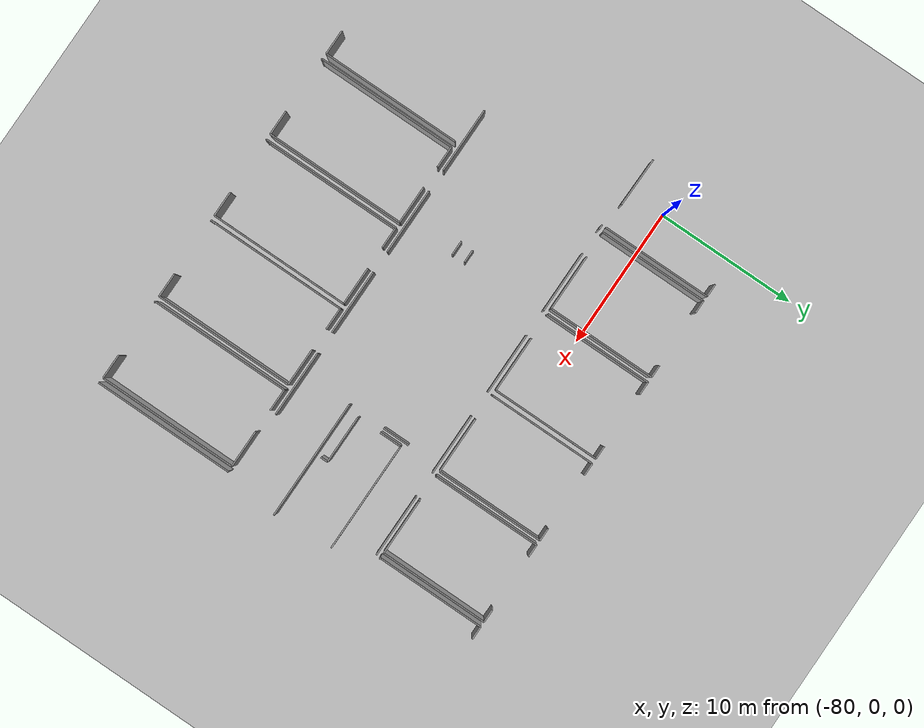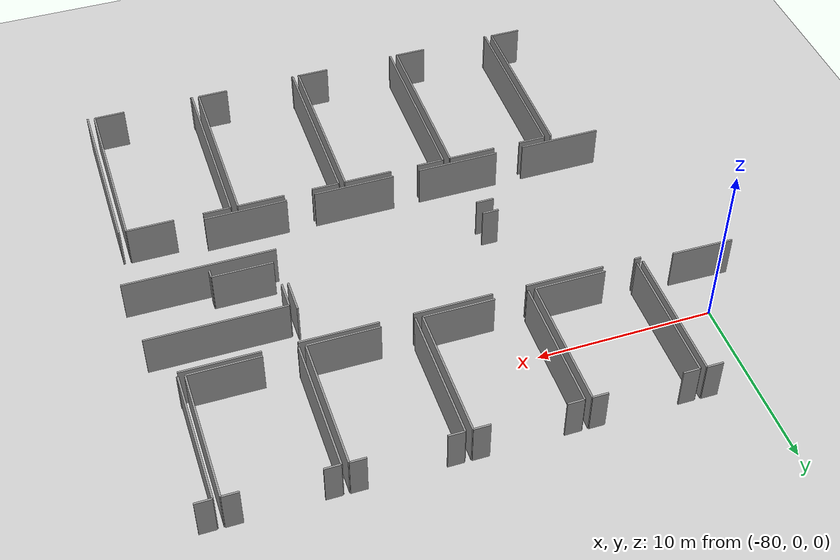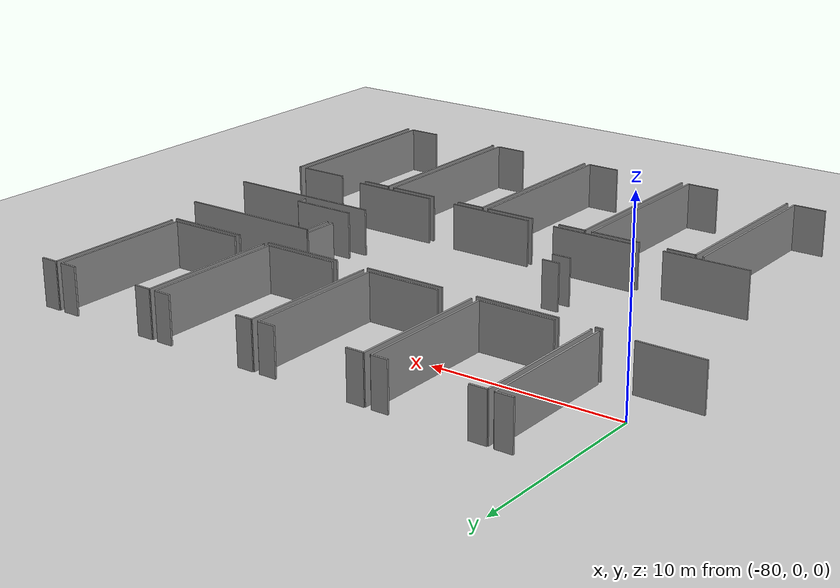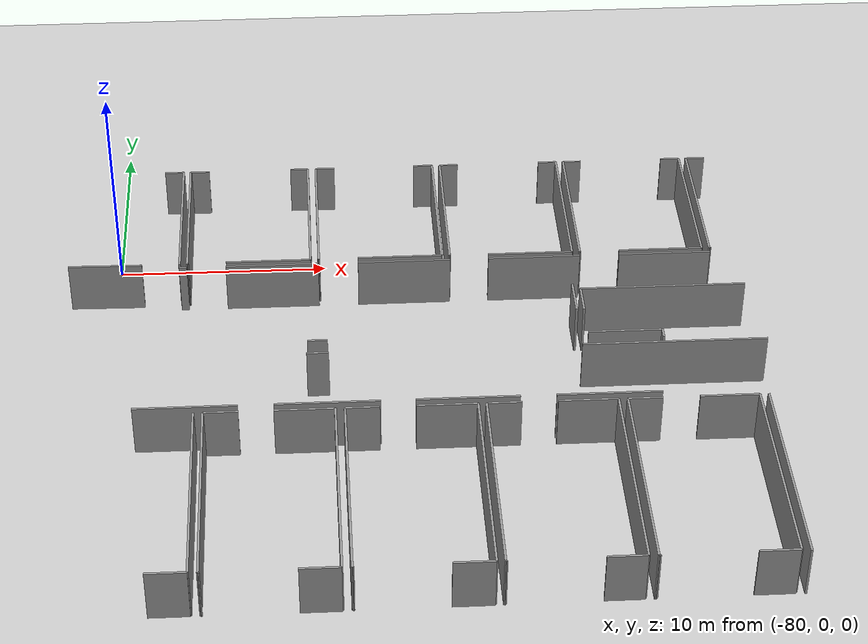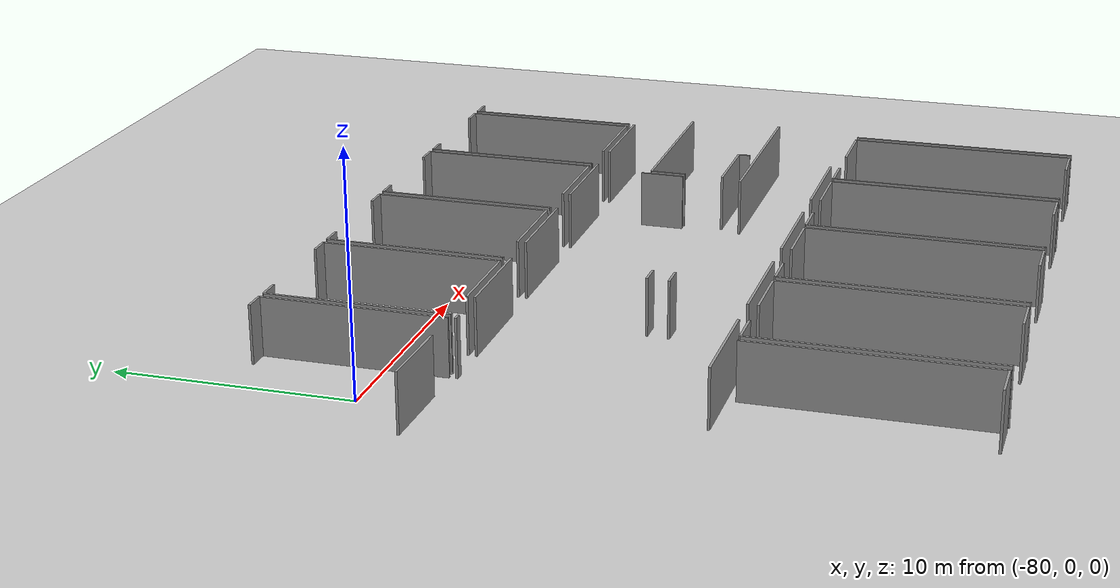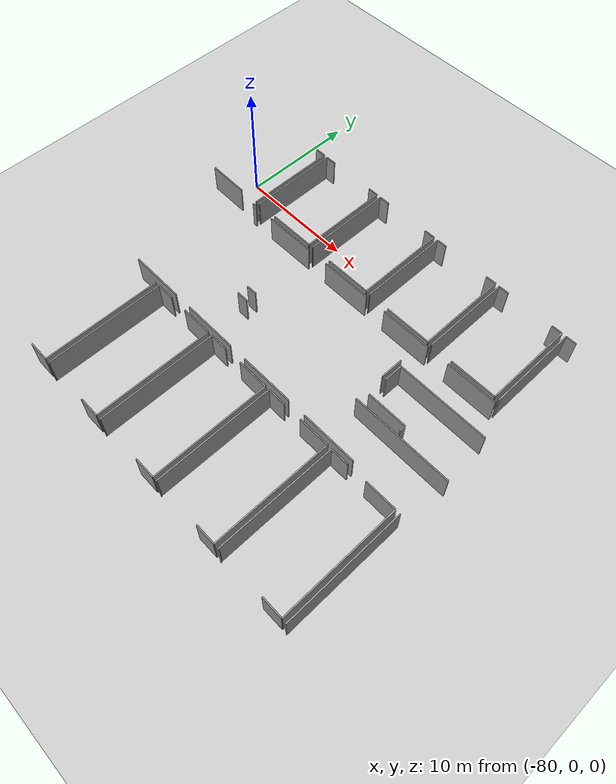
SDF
<sdf version="1.6">
 <world name="default">
  <model name="ground_plane">
   <static>1</static>
   <link name="link">
    <collision name="collision">
     <geometry><plane><normal>0 0 1</normal><size>100 100</size></plane></geometry>
     <surface><friction><ode><mu>100</mu><mu2>50</mu2></ode></friction></surface>
    </collision>
    <visual name="visual">
     <cast_shadows>0</cast_shadows>
     <geometry><plane><normal>0 0 1</normal><size>100 100</size></plane></geometry>
     <material>
      <script><uri>file://media/materials/scripts/gazebo.material</uri><name>Gazebo/Grey</name></script>
     </material>
    </visual>
   </link>
  </model>
  <model name="0510035343_A_40_1_102">
   <static>1</static>
   <link name="Wall_26">
    <collision name="Wall_26_Collision">
     <geometry><box><size>1.01177441366 0.1 2.5</size></box></geometry>
     <pose>0.50588720683 0 1.25 0 0 0</pose>
    </collision>
    <visual name="Wall_26_Visual">
     <pose>0.50588720683 0 1.25 0 0 0</pose>
     <geometry><box><size>1.01177441366 0.1 2.5</size></box></geometry>
     <material>
      <script><uri>file://media/materials/scripts/gazebo.material</uri><name>Gazebo/Grey</name></script>
      <ambient>1 1 1 1</ambient>
     </material>
    </visual>
    <pose>45.7740962899 -34.066203307 0 0 0 0.0</pose>
   </link>
   <link name="Wall_27">
    <collision name="Wall_27_Collision">
     <geometry><box><size>8.5288647688 0.1 2.5</size></box></geometry>
     <pose>4.2644323844 0 1.25 0 0 0</pose>
    </collision>
    <visual name="Wall_27_Visual">
     <pose>4.2644323844 0 1.25 0 0 0</pose>
     <geometry><box><size>8.5288647688 0.1 2.5</size></box></geometry>
     <material>
      <script><uri>file://media/materials/scripts/gazebo.material</uri><name>Gazebo/Grey</name></script>
      <ambient>1 1 1 1</ambient>
     </material>
    </visual>
    <pose>58.368085309 -34.066203307 0 0 0 0.0</pose>
   </link>
   <link name="Wall_35">
    <collision name="Wall_35_Collision">
     <geometry><box><size>4.73439334793 0.1 2.5</size></box></geometry>
     <pose>2.36719667397 0 1.25 0 0 0</pose>
    </collision>
    <visual name="Wall_35_Visual">
     <pose>2.36719667397 0 1.25 0 0 0</pose>
     <geometry><box><size>4.73439334793 0.1 2.5</size></box></geometry>
     <material>
      <script><uri>file://media/materials/scripts/gazebo.material</uri><name>Gazebo/Grey</name></script>
      <ambient>1 1 1 1</ambient>
     </material>
    </visual>
    <pose>61.5656479101 -37.5938303342 0 0 0 3.14159265359</pose>
   </link>
   <link name="Wall_36">
    <collision name="Wall_36_Collision">
     <geometry><box><size>4.66736487988 0.1 2.5</size></box></geometry>
     <pose>2.33368243994 0 1.25 0 0 0</pose>
    </collision>
    <visual name="Wall_36_Visual">
     <pose>2.33368243994 0 1.25 0 0 0</pose>
     <geometry><box><size>4.66736487988 0.1 2.5</size></box></geometry>
     <material>
      <script><uri>file://media/materials/scripts/gazebo.material</uri><name>Gazebo/Grey</name></script>
      <ambient>1 1 1 1</ambient>
     </material>
    </visual>
    <pose>55.2195245803 -37.5938303342 0 0 0 3.14159265359</pose>
   </link>
   <link name="Wall_37">
    <collision name="Wall_37_Collision">
     <geometry><box><size>4.73439334793 0.1 2.5</size></box></geometry>
     <pose>2.36719667397 0 1.25 0 0 0</pose>
    </collision>
    <visual name="Wall_37_Visual">
     <pose>2.36719667397 0 1.25 0 0 0</pose>
     <geometry><box><size>4.73439334793 0.1 2.5</size></box></geometry>
     <material>
      <script><uri>file://media/materials/scripts/gazebo.material</uri><name>Gazebo/Grey</name></script>
      <ambient>1 1 1 1</ambient>
     </material>
    </visual>
    <pose>49.0077120823 -37.5938303342 0 0 0 3.14159265359</pose>
   </link>
   <link name="Wall_38">
    <collision name="Wall_38_Collision">
     <geometry><box><size>4.67168110699 0.1 2.5</size></box></geometry>
     <pose>2.33584055349 0 1.25 0 0 0</pose>
    </collision>
    <visual name="Wall_38_Visual">
     <pose>2.33584055349 0 1.25 0 0 0</pose>
     <geometry><box><size>4.67168110699 0.1 2.5</size></box></geometry>
     <material>
      <script><uri>file://media/materials/scripts/gazebo.material</uri><name>Gazebo/Grey</name></script>
      <ambient>1 1 1 1</ambient>
     </material>
    </visual>
    <pose>42.6775841823 -37.5938303342 0 0 0 3.14159265359</pose>
   </link>
   <link name="Wall_103">
    <collision name="Wall_103_Collision">
     <geometry><box><size>10.0019676918 0.1 2.5</size></box></geometry>
     <pose>5.00098384589 0 1.25 0 0 0</pose>
    </collision>
    <visual name="Wall_103_Visual">
     <pose>5.00098384589 0 1.25 0 0 0</pose>
     <geometry><box><size>10.0019676918 0.1 2.5</size></box></geometry>
     <material>
      <script><uri>file://media/materials/scripts/gazebo.material</uri><name>Gazebo/Grey</name></script>
      <ambient>1 1 1 1</ambient>
     </material>
    </visual>
    <pose>40.7159859088 -37.9932082897 0 0 0 -1.57079632679</pose>
   </link>
   <link name="Wall_104">
    <collision name="Wall_104_Collision">
     <geometry><box><size>1.77371544638 0.1 2.5</size></box></geometry>
     <pose>0.88685772319 0 1.25 0 0 0</pose>
    </collision>
    <visual name="Wall_104_Visual">
     <pose>0.88685772319 0 1.25 0 0 0</pose>
     <geometry><box><size>1.77371544638 0.1 2.5</size></box></geometry>
     <material>
      <script><uri>file://media/materials/scripts/gazebo.material</uri><name>Gazebo/Grey</name></script>
      <ambient>1 1 1 1</ambient>
     </material>
    </visual>
    <pose>40.7159859088 -47.9951759815 0 0 0 3.14159265359</pose>
   </link>
   <link name="Wall_106">
    <collision name="Wall_106_Collision">
     <geometry><box><size>10.0354819258 0.1 2.5</size></box></geometry>
     <pose>5.0177409629 0 1.25 0 0 0</pose>
    </collision>
    <visual name="Wall_106_Visual">
     <pose>5.0177409629 0 1.25 0 0 0</pose>
     <geometry><box><size>10.0354819258 0.1 2.5</size></box></geometry>
     <material>
      <script><uri>file://media/materials/scripts/gazebo.material</uri><name>Gazebo/Grey</name></script>
      <ambient>1 1 1 1</ambient>
     </material>
    </visual>
    <pose>41.1387222698 -48.0457012282 0 0 0 1.57079632679</pose>
   </link>
   <link name="Wall_107">
    <collision name="Wall_107_Collision">
     <geometry><box><size>1.56577485798 0.1 2.5</size></box></geometry>
     <pose>0.782887428989 0 1.25 0 0 0</pose>
    </collision>
    <visual name="Wall_107_Visual">
     <pose>0.782887428989 0 1.25 0 0 0</pose>
     <geometry><box><size>1.56577485798 0.1 2.5</size></box></geometry>
     <material>
      <script><uri>file://media/materials/scripts/gazebo.material</uri><name>Gazebo/Grey</name></script>
      <ambient>1 1 1 1</ambient>
     </material>
    </visual>
    <pose>41.1387222698 -38.0102193024 0 0 0 0.0</pose>
   </link>
   <link name="Wall_108">
    <collision name="Wall_108_Collision">
     <geometry><box><size>2.72226982767 0.1 2.5</size></box></geometry>
     <pose>1.36113491383 0 1.25 0 0 0</pose>
    </collision>
    <visual name="Wall_108_Visual">
     <pose>1.36113491383 0 1.25 0 0 0</pose>
     <geometry><box><size>2.72226982767 0.1 2.5</size></box></geometry>
     <material>
      <script><uri>file://media/materials/scripts/gazebo.material</uri><name>Gazebo/Grey</name></script>
      <ambient>1 1 1 1</ambient>
     </material>
    </visual>
    <pose>44.2644323844 -38.0102193024 0 0 0 0.0</pose>
   </link>
   <link name="Wall_109">
    <collision name="Wall_109_Collision">
     <geometry><box><size>10.014154686 0.1 2.5</size></box></geometry>
     <pose>5.00707734298 0 1.25 0 0 0</pose>
    </collision>
    <visual name="Wall_109_Visual">
     <pose>5.00707734298 0 1.25 0 0 0</pose>
     <geometry><box><size>10.014154686 0.1 2.5</size></box></geometry>
     <material>
      <script><uri>file://media/materials/scripts/gazebo.material</uri><name>Gazebo/Grey</name></script>
      <ambient>1 1 1 1</ambient>
     </material>
    </visual>
    <pose>46.9867022121 -38.0102193024 0 0 0 -1.57079632679</pose>
   </link>
   <link name="Wall_110">
    <collision name="Wall_110_Collision">
     <geometry><box><size>1.76838363642 0.1 2.5</size></box></geometry>
     <pose>0.884191818211 0 1.25 0 0 0</pose>
    </collision>
    <visual name="Wall_110_Visual">
     <pose>0.884191818211 0 1.25 0 0 0</pose>
     <geometry><box><size>1.76838363642 0.1 2.5</size></box></geometry>
     <material>
      <script><uri>file://media/materials/scripts/gazebo.material</uri><name>Gazebo/Grey</name></script>
      <ambient>1 1 1 1</ambient>
     </material>
    </visual>
    <pose>46.9867022121 -48.0243739884 0 0 0 3.14159265359</pose>
   </link>
   <link name="Wall_111">
    <collision name="Wall_111_Collision">
     <geometry><box><size>0.0628846940328 0.1 2.5</size></box></geometry>
     <pose>0.0314423470164 0 1.25 0 0 0</pose>
    </collision>
    <visual name="Wall_111_Visual">
     <pose>0.0314423470164 0 1.25 0 0 0</pose>
     <geometry><box><size>0.0628846940328 0.1 2.5</size></box></geometry>
     <material>
      <script><uri>file://media/materials/scripts/gazebo.material</uri><name>Gazebo/Grey</name></script>
      <ambient>1 1 1 1</ambient>
     </material>
    </visual>
    <pose>41.1978799708 -48.0243739884 0 0 0 -2.79558121527</pose>
   </link>
   <link name="Wall_112">
    <collision name="Wall_112_Collision">
     <geometry><box><size>10.0370053001 0.1 2.5</size></box></geometry>
     <pose>5.01850265004 0 1.25 0 0 0</pose>
    </collision>
    <visual name="Wall_112_Visual">
     <pose>5.01850265004 0 1.25 0 0 0</pose>
     <geometry><box><size>10.0370053001 0.1 2.5</size></box></geometry>
     <material>
      <script><uri>file://media/materials/scripts/gazebo.material</uri><name>Gazebo/Grey</name></script>
      <ambient>1 1 1 1</ambient>
     </material>
    </visual>
    <pose>47.4076613031 -48.0472246025 0 0 0 1.57079632679</pose>
   </link>
   <link name="Wall_113">
    <collision name="Wall_113_Collision">
     <geometry><box><size>1.54343203529 0.1 2.5</size></box></geometry>
     <pose>0.771716017646 0 1.25 0 0 0</pose>
    </collision>
    <visual name="Wall_113_Visual">
     <pose>0.771716017646 0 1.25 0 0 0</pose>
     <geometry><box><size>1.54343203529 0.1 2.5</size></box></geometry>
     <material>
      <script><uri>file://media/materials/scripts/gazebo.material</uri><name>Gazebo/Grey</name></script>
      <ambient>1 1 1 1</ambient>
     </material>
    </visual>
    <pose>47.4076613031 -38.0102193024 0 0 0 0.0</pose>
   </link>
   <link name="Wall_114">
    <collision name="Wall_114_Collision">
     <geometry><box><size>2.7435970675 0.1 2.5</size></box></geometry>
     <pose>1.37179853375 0 1.25 0 0 0</pose>
    </collision>
    <visual name="Wall_114_Visual">
     <pose>1.37179853375 0 1.25 0 0 0</pose>
     <geometry><box><size>2.7435970675 0.1 2.5</size></box></geometry>
     <material>
      <script><uri>file://media/materials/scripts/gazebo.material</uri><name>Gazebo/Grey</name></script>
      <ambient>1 1 1 1</ambient>
     </material>
    </visual>
    <pose>50.5587609889 -38.0102193024 0 0 0 0.0</pose>
   </link>
   <link name="Wall_115">
    <collision name="Wall_115_Collision">
     <geometry><box><size>9.99942873465 0.1 2.5</size></box></geometry>
     <pose>4.99971436732 0 1.25 0 0 0</pose>
    </collision>
    <visual name="Wall_115_Visual">
     <pose>4.99971436732 0 1.25 0 0 0</pose>
     <geometry><box><size>9.99942873465 0.1 2.5</size></box></geometry>
     <material>
      <script><uri>file://media/materials/scripts/gazebo.material</uri><name>Gazebo/Grey</name></script>
      <ambient>1 1 1 1</ambient>
     </material>
    </visual>
    <pose>53.3023580564 -38.0102193024 0 0 0 -1.57079632679</pose>
   </link>
   <link name="Wall_116">
    <collision name="Wall_116_Collision">
     <geometry><box><size>1.81078422038 0.1 2.5</size></box></geometry>
     <pose>0.905392110191 0 1.25 0 0 0</pose>
    </collision>
    <visual name="Wall_116_Visual">
     <pose>0.905392110191 0 1.25 0 0 0</pose>
     <geometry><box><size>1.81078422038 0.1 2.5</size></box></geometry>
     <material>
      <script><uri>file://media/materials/scripts/gazebo.material</uri><name>Gazebo/Grey</name></script>
      <ambient>1 1 1 1</ambient>
     </material>
    </visual>
    <pose>53.3023580564 -48.0096480371 0 0 0 3.14159265359</pose>
   </link>
   <link name="Wall_117">
    <collision name="Wall_117_Collision">
     <geometry><box><size>0.059756177695 0.1 2.5</size></box></geometry>
     <pose>0.0298780888475 0 1.25 0 0 0</pose>
    </collision>
    <visual name="Wall_117_Visual">
     <pose>0.0298780888475 0 1.25 0 0 0</pose>
     <geometry><box><size>0.059756177695 0.1 2.5</size></box></geometry>
     <material>
      <script><uri>file://media/materials/scripts/gazebo.material</uri><name>Gazebo/Grey</name></script>
      <ambient>1 1 1 1</ambient>
     </material>
    </visual>
    <pose>47.4541242185 -48.0096480371 0 0 0 -2.46154320118</pose>
   </link>
   <link name="Wall_118">
    <collision name="Wall_118_Collision">
     <geometry><box><size>10.023802723 0.1 2.5</size></box></geometry>
     <pose>5.01190136152 0 1.25 0 0 0</pose>
    </collision>
    <visual name="Wall_118_Visual">
     <pose>5.01190136152 0 1.25 0 0 0</pose>
     <geometry><box><size>10.023802723 0.1 2.5</size></box></geometry>
     <material>
      <script><uri>file://media/materials/scripts/gazebo.material</uri><name>Gazebo/Grey</name></script>
      <ambient>1 1 1 1</ambient>
     </material>
    </visual>
    <pose>53.6710146307 -48.0345298169 0 0 0 1.57079632679</pose>
   </link>
   <link name="Wall_119">
    <collision name="Wall_119_Collision">
     <geometry><box><size>1.57415341648 0.1 2.5</size></box></geometry>
     <pose>0.787076708242 0 1.25 0 0 0</pose>
    </collision>
    <visual name="Wall_119_Visual">
     <pose>0.787076708242 0 1.25 0 0 0</pose>
     <geometry><box><size>1.57415341648 0.1 2.5</size></box></geometry>
     <material>
      <script><uri>file://media/materials/scripts/gazebo.material</uri><name>Gazebo/Grey</name></script>
      <ambient>1 1 1 1</ambient>
     </material>
    </visual>
    <pose>53.6710146307 -38.0107270938 0 0 0 0.0</pose>
   </link>
   <link name="Wall_120">
    <collision name="Wall_120_Collision">
     <geometry><box><size>2.68494715795 0.1 2.5</size></box></geometry>
     <pose>1.34247357898 0 1.25 0 0 0</pose>
    </collision>
    <visual name="Wall_120_Visual">
     <pose>1.34247357898 0 1.25 0 0 0</pose>
     <geometry><box><size>2.68494715795 0.1 2.5</size></box></geometry>
     <material>
      <script><uri>file://media/materials/scripts/gazebo.material</uri><name>Gazebo/Grey</name></script>
      <ambient>1 1 1 1</ambient>
     </material>
    </visual>
    <pose>56.8553746549 -38.0107270938 0 0 0 0.0</pose>
   </link>
   <link name="Wall_121">
    <collision name="Wall_121_Collision">
     <geometry><box><size>9.97860928624 0.1 2.5</size></box></geometry>
     <pose>4.98930464312 0 1.25 0 0 0</pose>
    </collision>
    <visual name="Wall_121_Visual">
     <pose>4.98930464312 0 1.25 0 0 0</pose>
     <geometry><box><size>9.97860928624 0.1 2.5</size></box></geometry>
     <material>
      <script><uri>file://media/materials/scripts/gazebo.material</uri><name>Gazebo/Grey</name></script>
      <ambient>1 1 1 1</ambient>
     </material>
    </visual>
    <pose>59.5403218128 -38.0107270938 0 0 0 -1.57079632679</pose>
   </link>
   <link name="Wall_122">
    <collision name="Wall_122_Collision">
     <geometry><box><size>1.73004538386 0.1 2.5</size></box></geometry>
     <pose>0.865022691929 0 1.25 0 0 0</pose>
    </collision>
    <visual name="Wall_122_Visual">
     <pose>0.865022691929 0 1.25 0 0 0</pose>
     <geometry><box><size>1.73004538386 0.1 2.5</size></box></geometry>
     <material>
      <script><uri>file://media/materials/scripts/gazebo.material</uri><name>Gazebo/Grey</name></script>
      <ambient>1 1 1 1</ambient>
     </material>
    </visual>
    <pose>59.5403218128 -47.9893363801 0 0 0 3.14159265359</pose>
   </link>
   <link name="Wall_123">
    <collision name="Wall_123_Collision">
     <geometry><box><size>0.0724439706579 0.1 2.5</size></box></geometry>
     <pose>0.0362219853289 0 1.25 0 0 0</pose>
    </collision>
    <visual name="Wall_123_Visual">
     <pose>0.0362219853289 0 1.25 0 0 0</pose>
     <geometry><box><size>0.0724439706579 0.1 2.5</size></box></geometry>
     <material>
      <script><uri>file://media/materials/scripts/gazebo.material</uri><name>Gazebo/Grey</name></script>
      <ambient>1 1 1 1</ambient>
     </material>
    </visual>
    <pose>53.7276333746 -47.9893363801 0 0 0 -2.46794640168</pose>
   </link>
   <link name="Wall_124">
    <collision name="Wall_124_Collision">
     <geometry><box><size>10.0103462503 0.1 2.5</size></box></geometry>
     <pose>5.00517312514 0 1.25 0 0 0</pose>
    </collision>
    <visual name="Wall_124_Visual">
     <pose>5.00517312514 0 1.25 0 0 0</pose>
     <geometry><box><size>10.0103462503 0.1 2.5</size></box></geometry>
     <material>
      <script><uri>file://media/materials/scripts/gazebo.material</uri><name>Gazebo/Grey</name></script>
      <ambient>1 1 1 1</ambient>
     </material>
    </visual>
    <pose>59.9511250754 -48.0332603383 0 0 0 1.57079632679</pose>
   </link>
   <link name="Wall_125">
    <collision name="Wall_125_Collision">
     <geometry><box><size>1.56882160653 0.1 2.5</size></box></geometry>
     <pose>0.784410803263 0 1.25 0 0 0</pose>
    </collision>
    <visual name="Wall_125_Visual">
     <pose>0.784410803263 0 1.25 0 0 0</pose>
     <geometry><box><size>1.56882160653 0.1 2.5</size></box></geometry>
     <material>
      <script><uri>file://media/materials/scripts/gazebo.material</uri><name>Gazebo/Grey</name></script>
      <ambient>1 1 1 1</ambient>
     </material>
    </visual>
    <pose>59.9511250754 -38.022914088 0 0 0 0.0</pose>
   </link>
   <link name="Wall_126">
    <collision name="Wall_126_Collision">
     <geometry><box><size>2.66869783237 0.1 2.5</size></box></geometry>
     <pose>1.33434891618 0 1.25 0 0 0</pose>
    </collision>
    <visual name="Wall_126_Visual">
     <pose>1.33434891618 0 1.25 0 0 0</pose>
     <geometry><box><size>2.66869783237 0.1 2.5</size></box></geometry>
     <material>
      <script><uri>file://media/materials/scripts/gazebo.material</uri><name>Gazebo/Grey</name></script>
      <ambient>1 1 1 1</ambient>
     </material>
    </visual>
    <pose>63.1745850392 -38.022914088 0 0 0 0.0</pose>
   </link>
   <link name="Wall_127">
    <collision name="Wall_127_Collision">
     <geometry><box><size>9.95702815069 0.1 2.5</size></box></geometry>
     <pose>4.97851407534 0 1.25 0 0 0</pose>
    </collision>
    <visual name="Wall_127_Visual">
     <pose>4.97851407534 0 1.25 0 0 0</pose>
     <geometry><box><size>9.95702815069 0.1 2.5</size></box></geometry>
     <material>
      <script><uri>file://media/materials/scripts/gazebo.material</uri><name>Gazebo/Grey</name></script>
      <ambient>1 1 1 1</ambient>
     </material>
    </visual>
    <pose>65.8432828716 -38.022914088 0 0 0 -1.57079632679</pose>
   </link>
   <link name="Wall_128">
    <collision name="Wall_128_Collision">
     <geometry><box><size>1.76635247072 0.1 2.5</size></box></geometry>
     <pose>0.883176235361 0 1.25 0 0 0</pose>
    </collision>
    <visual name="Wall_128_Visual">
     <pose>0.883176235361 0 1.25 0 0 0</pose>
     <geometry><box><size>1.76635247072 0.1 2.5</size></box></geometry>
     <material>
      <script><uri>file://media/materials/scripts/gazebo.material</uri><name>Gazebo/Grey</name></script>
      <ambient>1 1 1 1</ambient>
     </material>
    </visual>
    <pose>65.8432828716 -47.9799422387 0 0 0 3.14159265359</pose>
   </link>
   <link name="Wall_129">
    <collision name="Wall_129_Collision">
     <geometry><box><size>0.0921456066274 0.1 2.5</size></box></geometry>
     <pose>0.0460728033137 0 1.25 0 0 0</pose>
    </collision>
    <visual name="Wall_129_Visual">
     <pose>0.0460728033137 0 1.25 0 0 0</pose>
     <geometry><box><size>0.0921456066274 0.1 2.5</size></box></geometry>
     <material>
      <script><uri>file://media/materials/scripts/gazebo.material</uri><name>Gazebo/Grey</name></script>
      <ambient>1 1 1 1</ambient>
     </material>
    </visual>
    <pose>60.0262782062 -47.9799422387 0 0 0 -2.5245462316</pose>
   </link>
   <link name="Wall_130">
    <collision name="Wall_130_Collision">
     <geometry><box><size>10.0354819258 0.1 2.5</size></box></geometry>
     <pose>5.0177409629 0 1.25 0 0 0</pose>
    </collision>
    <visual name="Wall_130_Visual">
     <pose>5.0177409629 0 1.25 0 0 0</pose>
     <geometry><box><size>10.0354819258 0.1 2.5</size></box></geometry>
     <material>
      <script><uri>file://media/materials/scripts/gazebo.material</uri><name>Gazebo/Grey</name></script>
      <ambient>1 1 1 1</ambient>
     </material>
    </visual>
    <pose>66.246215367 -48.0457012282 0 0 0 1.57079632679</pose>
   </link>
   <link name="Wall_414">
    <collision name="Wall_414_Collision">
     <geometry><box><size>0.921387540068 0.1 2.5</size></box></geometry>
     <pose>0.460693770034 0 1.25 0 0 0</pose>
    </collision>
    <visual name="Wall_414_Visual">
     <pose>0.460693770034 0 1.25 0 0 0</pose>
     <geometry><box><size>0.921387540068 0.1 2.5</size></box></geometry>
     <material>
      <script><uri>file://media/materials/scripts/gazebo.material</uri><name>Gazebo/Grey</name></script>
      <ambient>1 1 1 1</ambient>
     </material>
    </visual>
    <pose>38.908248437 -19.1635405757 0 0 0 0.0</pose>
   </link>
   <link name="Wall_415">
    <collision name="Wall_415_Collision">
     <geometry><box><size>7.79713732584 0.1 2.5</size></box></geometry>
     <pose>3.89856866292 0 1.25 0 0 0</pose>
    </collision>
    <visual name="Wall_415_Visual">
     <pose>3.89856866292 0 1.25 0 0 0</pose>
     <geometry><box><size>7.79713732584 0.1 2.5</size></box></geometry>
     <material>
      <script><uri>file://media/materials/scripts/gazebo.material</uri><name>Gazebo/Grey</name></script>
      <ambient>1 1 1 1</ambient>
     </material>
    </visual>
    <pose>39.829635977 -19.1635405757 0 0 0 -1.57079632679</pose>
   </link>
   <link name="Wall_416">
    <collision name="Wall_416_Collision">
     <geometry><box><size>3.50298236942 0.1 2.5</size></box></geometry>
     <pose>1.75149118471 0 1.25 0 0 0</pose>
    </collision>
    <visual name="Wall_416_Visual">
     <pose>1.75149118471 0 1.25 0 0 0</pose>
     <geometry><box><size>3.50298236942 0.1 2.5</size></box></geometry>
     <material>
      <script><uri>file://media/materials/scripts/gazebo.material</uri><name>Gazebo/Grey</name></script>
      <ambient>1 1 1 1</ambient>
     </material>
    </visual>
    <pose>38.0394173093 -26.9606779016 0 0 0 3.12484902092</pose>
   </link>
   <link name="Wall_417">
    <collision name="Wall_417_Collision">
     <geometry><box><size>7.76870100606 0.1 2.5</size></box></geometry>
     <pose>3.88435050303 0 1.25 0 0 0</pose>
    </collision>
    <visual name="Wall_417_Visual">
     <pose>3.88435050303 0 1.25 0 0 0</pose>
     <geometry><box><size>7.76870100606 0.1 2.5</size></box></geometry>
     <material>
      <script><uri>file://media/materials/scripts/gazebo.material</uri><name>Gazebo/Grey</name></script>
      <ambient>1 1 1 1</ambient>
     </material>
    </visual>
    <pose>40.1891523057 -26.9515376559 0 0 0 1.57079632679</pose>
   </link>
   <link name="Wall_418">
    <collision name="Wall_418_Collision">
     <geometry><box><size>0.927227141452 0.1 2.5</size></box></geometry>
     <pose>0.463613570726 0 1.25 0 0 0</pose>
    </collision>
    <visual name="Wall_418_Visual">
     <pose>0.463613570726 0 1.25 0 0 0</pose>
     <geometry><box><size>0.927227141452 0.1 2.5</size></box></geometry>
     <material>
      <script><uri>file://media/materials/scripts/gazebo.material</uri><name>Gazebo/Grey</name></script>
      <ambient>1 1 1 1</ambient>
     </material>
    </visual>
    <pose>40.1891523057 -19.1828366498 0 0 0 0.0</pose>
   </link>
   <link name="Wall_419">
    <collision name="Wall_419_Collision">
     <geometry><box><size>0.877971373258 0.1 2.5</size></box></geometry>
     <pose>0.438985686629 0 1.25 0 0 0</pose>
    </collision>
    <visual name="Wall_419_Visual">
     <pose>0.438985686629 0 1.25 0 0 0</pose>
     <geometry><box><size>0.877971373258 0.1 2.5</size></box></geometry>
     <material>
      <script><uri>file://media/materials/scripts/gazebo.material</uri><name>Gazebo/Grey</name></script>
      <ambient>1 1 1 1</ambient>
     </material>
    </visual>
    <pose>45.2015614586 -19.1828366498 0 0 0 0.0</pose>
   </link>
   <link name="Wall_420">
    <collision name="Wall_420_Collision">
     <geometry><box><size>7.73137833635 0.1 2.5</size></box></geometry>
     <pose>3.86568916817 0 1.25 0 0 0</pose>
    </collision>
    <visual name="Wall_420_Visual">
     <pose>3.86568916817 0 1.25 0 0 0</pose>
     <geometry><box><size>7.73137833635 0.1 2.5</size></box></geometry>
     <material>
      <script><uri>file://media/materials/scripts/gazebo.material</uri><name>Gazebo/Grey</name></script>
      <ambient>1 1 1 1</ambient>
     </material>
    </visual>
    <pose>46.0795328319 -19.1828366498 0 0 0 -1.57079632679</pose>
   </link>
   <link name="Wall_421">
    <collision name="Wall_421_Collision">
     <geometry><box><size>4.0278015805 0.1 2.5</size></box></geometry>
     <pose>2.01390079025 0 1.25 0 0 0</pose>
    </collision>
    <visual name="Wall_421_Visual">
     <pose>2.01390079025 0 1.25 0 0 0</pose>
     <geometry><box><size>4.0278015805 0.1 2.5</size></box></geometry>
     <material>
      <script><uri>file://media/materials/scripts/gazebo.material</uri><name>Gazebo/Grey</name></script>
      <ambient>1 1 1 1</ambient>
     </material>
    </visual>
    <pose>46.0795328319 -26.9142149862 0 0 0 3.14159265359</pose>
   </link>
   <link name="Wall_422">
    <collision name="Wall_422_Collision">
     <geometry><box><size>0.0628154617445 0.1 2.5</size></box></geometry>
     <pose>0.0314077308723 0 1.25 0 0 0</pose>
    </collision>
    <visual name="Wall_422_Visual">
     <pose>0.0314077308723 0 1.25 0 0 0</pose>
     <geometry><box><size>0.0628154617445 0.1 2.5</size></box></geometry>
     <material>
      <script><uri>file://media/materials/scripts/gazebo.material</uri><name>Gazebo/Grey</name></script>
      <ambient>1 1 1 1</ambient>
     </material>
    </visual>
    <pose>40.2396775524 -26.9142149862 0 0 0 -2.50536708336</pose>
   </link>
   <link name="Wall_423">
    <collision name="Wall_423_Collision">
     <geometry><box><size>7.70548097369 0.1 2.5</size></box></geometry>
     <pose>3.85274048685 0 1.25 0 0 0</pose>
    </collision>
    <visual name="Wall_423_Visual">
     <pose>3.85274048685 0 1.25 0 0 0</pose>
     <geometry><box><size>7.70548097369 0.1 2.5</size></box></geometry>
     <material>
      <script><uri>file://media/materials/scripts/gazebo.material</uri><name>Gazebo/Grey</name></script>
      <ambient>1 1 1 1</ambient>
     </material>
    </visual>
    <pose>46.4804341617 -26.8936494335 0 0 0 1.57079632679</pose>
   </link>
   <link name="Wall_424">
    <collision name="Wall_424_Collision">
     <geometry><box><size>0.933066742835 0.1 2.5</size></box></geometry>
     <pose>0.466533371418 0 1.25 0 0 0</pose>
    </collision>
    <visual name="Wall_424_Visual">
     <pose>0.466533371418 0 1.25 0 0 0</pose>
     <geometry><box><size>0.933066742835 0.1 2.5</size></box></geometry>
     <material>
      <script><uri>file://media/materials/scripts/gazebo.material</uri><name>Gazebo/Grey</name></script>
      <ambient>1 1 1 1</ambient>
     </material>
    </visual>
    <pose>46.4804341617 -19.1881684598 0 0 0 0.0</pose>
   </link>
   <link name="Wall_425">
    <collision name="Wall_425_Collision">
     <geometry><box><size>0.933066742835 0.1 2.5</size></box></geometry>
     <pose>0.466533371418 0 1.25 0 0 0</pose>
    </collision>
    <visual name="Wall_425_Visual">
     <pose>0.466533371418 0 1.25 0 0 0</pose>
     <geometry><box><size>0.933066742835 0.1 2.5</size></box></geometry>
     <material>
      <script><uri>file://media/materials/scripts/gazebo.material</uri><name>Gazebo/Grey</name></script>
      <ambient>1 1 1 1</ambient>
     </material>
    </visual>
    <pose>51.4308927608 -19.1881684598 0 0 0 0.0</pose>
   </link>
   <link name="Wall_426">
    <collision name="Wall_426_Collision">
     <geometry><box><size>7.70548097369 0.1 2.5</size></box></geometry>
     <pose>3.85274048685 0 1.25 0 0 0</pose>
    </collision>
    <visual name="Wall_426_Visual">
     <pose>3.85274048685 0 1.25 0 0 0</pose>
     <geometry><box><size>7.70548097369 0.1 2.5</size></box></geometry>
     <material>
      <script><uri>file://media/materials/scripts/gazebo.material</uri><name>Gazebo/Grey</name></script>
      <ambient>1 1 1 1</ambient>
     </material>
    </visual>
    <pose>52.3639595036 -19.1881684598 0 0 0 -1.57079632679</pose>
   </link>
   <link name="Wall_427">
    <collision name="Wall_427_Collision">
     <geometry><box><size>3.99936526072 0.1 2.5</size></box></geometry>
     <pose>1.99968263036 0 1.25 0 0 0</pose>
    </collision>
    <visual name="Wall_427_Visual">
     <pose>1.99968263036 0 1.25 0 0 0</pose>
     <geometry><box><size>3.99936526072 0.1 2.5</size></box></geometry>
     <material>
      <script><uri>file://media/materials/scripts/gazebo.material</uri><name>Gazebo/Grey</name></script>
      <ambient>1 1 1 1</ambient>
     </material>
    </visual>
    <pose>52.3639595036 -26.8936494335 0 0 0 3.14159265359</pose>
   </link>
   <link name="Wall_428">
    <collision name="Wall_428_Collision">
     <geometry><box><size>0.0439239582342 0.1 2.5</size></box></geometry>
     <pose>0.0219619791171 0 1.25 0 0 0</pose>
    </collision>
    <visual name="Wall_428_Visual">
     <pose>0.0219619791171 0 1.25 0 0 0</pose>
     <geometry><box><size>0.0439239582342 0.1 2.5</size></box></geometry>
     <material>
      <script><uri>file://media/materials/scripts/gazebo.material</uri><name>Gazebo/Grey</name></script>
      <ambient>1 1 1 1</ambient>
     </material>
    </visual>
    <pose>46.5243581199 -26.8936494335 0 0 0 3.14159265359</pose>
   </link>
   <link name="Wall_429">
    <collision name="Wall_429_Collision">
     <geometry><box><size>7.72756990066 0.1 2.5</size></box></geometry>
     <pose>3.86378495033 0 1.25 0 0 0</pose>
    </collision>
    <visual name="Wall_429_Visual">
     <pose>3.86378495033 0 1.25 0 0 0</pose>
     <geometry><box><size>7.72756990066 0.1 2.5</size></box></geometry>
     <material>
      <script><uri>file://media/materials/scripts/gazebo.material</uri><name>Gazebo/Grey</name></script>
      <ambient>1 1 1 1</ambient>
     </material>
    </visual>
    <pose>52.759021232 -26.9266558761 0 0 0 1.57079632679</pose>
   </link>
   <link name="Wall_430">
    <collision name="Wall_430_Collision">
     <geometry><box><size>0.899298613095 0.1 2.5</size></box></geometry>
     <pose>0.449649306547 0 1.25 0 0 0</pose>
    </collision>
    <visual name="Wall_430_Visual">
     <pose>0.449649306547 0 1.25 0 0 0</pose>
     <geometry><box><size>0.899298613095 0.1 2.5</size></box></geometry>
     <material>
      <script><uri>file://media/materials/scripts/gazebo.material</uri><name>Gazebo/Grey</name></script>
      <ambient>1 1 1 1</ambient>
     </material>
    </visual>
    <pose>52.759021232 -19.1990859754 0 0 0 0.0</pose>
   </link>
   <link name="Wall_431">
    <collision name="Wall_431_Collision">
     <geometry><box><size>0.897267447396 0.1 2.5</size></box></geometry>
     <pose>0.448633723698 0 1.25 0 0 0</pose>
    </collision>
    <visual name="Wall_431_Visual">
     <pose>0.448633723698 0 1.25 0 0 0</pose>
     <geometry><box><size>0.897267447396 0.1 2.5</size></box></geometry>
     <material>
      <script><uri>file://media/materials/scripts/gazebo.material</uri><name>Gazebo/Grey</name></script>
      <ambient>1 1 1 1</ambient>
     </material>
    </visual>
    <pose>57.762544035 -19.1990859754 0 0 0 0.0</pose>
   </link>
   <link name="Wall_432">
    <collision name="Wall_432_Collision">
     <geometry><box><size>7.72807769209 0.1 2.5</size></box></geometry>
     <pose>3.86403884604 0 1.25 0 0 0</pose>
    </collision>
    <visual name="Wall_432_Visual">
     <pose>3.86403884604 0 1.25 0 0 0</pose>
     <geometry><box><size>7.72807769209 0.1 2.5</size></box></geometry>
     <material>
      <script><uri>file://media/materials/scripts/gazebo.material</uri><name>Gazebo/Grey</name></script>
      <ambient>1 1 1 1</ambient>
     </material>
    </visual>
    <pose>58.6598114824 -19.1990859754 0 0 0 -1.57079632679</pose>
   </link>
   <link name="Wall_433">
    <collision name="Wall_433_Collision">
     <geometry><box><size>4.03948078327 0.1 2.5</size></box></geometry>
     <pose>2.01974039163 0 1.25 0 0 0</pose>
    </collision>
    <visual name="Wall_433_Visual">
     <pose>2.01974039163 0 1.25 0 0 0</pose>
     <geometry><box><size>4.03948078327 0.1 2.5</size></box></geometry>
     <material>
      <script><uri>file://media/materials/scripts/gazebo.material</uri><name>Gazebo/Grey</name></script>
      <ambient>1 1 1 1</ambient>
     </material>
    </visual>
    <pose>58.6598114824 -26.9271636675 0 0 0 3.14159265359</pose>
   </link>
   <link name="Wall_434">
    <collision name="Wall_434_Collision">
     <geometry><box><size>0.0330103484605 0.1 2.5</size></box></geometry>
     <pose>0.0165051742302 0 1.25 0 0 0</pose>
    </collision>
    <visual name="Wall_434_Visual">
     <pose>0.0165051742302 0 1.25 0 0 0</pose>
     <geometry><box><size>0.0330103484605 0.1 2.5</size></box></geometry>
     <material>
      <script><uri>file://media/materials/scripts/gazebo.material</uri><name>Gazebo/Grey</name></script>
      <ambient>1 1 1 1</ambient>
     </material>
    </visual>
    <pose>52.7920276746 -26.9271636675 0 0 0 3.12620925181</pose>
   </link>
   <link name="Wall_435">
    <collision name="Wall_435_Collision">
     <geometry><box><size>7.73696404202 0.1 2.5</size></box></geometry>
     <pose>3.86848202101 0 1.25 0 0 0</pose>
    </collision>
    <visual name="Wall_435_Visual">
     <pose>3.86848202101 0 1.25 0 0 0</pose>
     <geometry><box><size>7.73696404202 0.1 2.5</size></box></geometry>
     <material>
      <script><uri>file://media/materials/scripts/gazebo.material</uri><name>Gazebo/Grey</name></script>
      <ambient>1 1 1 1</ambient>
     </material>
    </visual>
    <pose>59.029991431 -26.9515376559 0 0 0 1.57079632679</pose>
   </link>
   <link name="Wall_436">
    <collision name="Wall_436_Collision">
     <geometry><box><size>0.891935637437 0.1 2.5</size></box></geometry>
     <pose>0.445967818718 0 1.25 0 0 0</pose>
    </collision>
    <visual name="Wall_436_Visual">
     <pose>0.445967818718 0 1.25 0 0 0</pose>
     <geometry><box><size>0.891935637437 0.1 2.5</size></box></geometry>
     <material>
      <script><uri>file://media/materials/scripts/gazebo.material</uri><name>Gazebo/Grey</name></script>
      <ambient>1 1 1 1</ambient>
     </material>
    </visual>
    <pose>59.029991431 -19.2145736139 0 0 0 0.0</pose>
   </link>
   <link name="Wall_437">
    <collision name="Wall_437_Collision">
     <geometry><box><size>0.92164143578 0.1 2.5</size></box></geometry>
     <pose>0.46082071789 0 1.25 0 0 0</pose>
    </collision>
    <visual name="Wall_437_Visual">
     <pose>0.46082071789 0 1.25 0 0 0</pose>
     <geometry><box><size>0.92164143578 0.1 2.5</size></box></geometry>
     <material>
      <script><uri>file://media/materials/scripts/gazebo.material</uri><name>Gazebo/Grey</name></script>
      <ambient>1 1 1 1</ambient>
     </material>
    </visual>
    <pose>64.0116792028 -19.2145736139 0 0 0 0.0</pose>
   </link>
   <link name="Wall_438">
    <collision name="Wall_438_Collision">
     <geometry><box><size>7.72299977784 0.1 2.5</size></box></geometry>
     <pose>3.86149988892 0 1.25 0 0 0</pose>
    </collision>
    <visual name="Wall_438_Visual">
     <pose>3.86149988892 0 1.25 0 0 0</pose>
     <geometry><box><size>7.72299977784 0.1 2.5</size></box></geometry>
     <material>
      <script><uri>file://media/materials/scripts/gazebo.material</uri><name>Gazebo/Grey</name></script>
      <ambient>1 1 1 1</ambient>
     </material>
    </visual>
    <pose>64.9333206385 -19.2145736139 0 0 0 -1.57079632679</pose>
   </link>
   <link name="Wall_439">
    <collision name="Wall_439_Collision">
     <geometry><box><size>4.00748992351 0.1 2.5</size></box></geometry>
     <pose>2.00374496176 0 1.25 0 0 0</pose>
    </collision>
    <visual name="Wall_439_Visual">
     <pose>2.00374496176 0 1.25 0 0 0</pose>
     <geometry><box><size>4.00748992351 0.1 2.5</size></box></geometry>
     <material>
      <script><uri>file://media/materials/scripts/gazebo.material</uri><name>Gazebo/Grey</name></script>
      <ambient>1 1 1 1</ambient>
     </material>
    </visual>
    <pose>64.9333206385 -26.9375733917 0 0 0 3.14159265359</pose>
   </link>
   <link name="Wall_440">
    <collision name="Wall_440_Collision">
     <geometry><box><size>0.051930208085 0.1 2.5</size></box></geometry>
     <pose>0.0259651040425 0 1.25 0 0 0</pose>
    </collision>
    <visual name="Wall_440_Visual">
     <pose>0.0259651040425 0 1.25 0 0 0</pose>
     <geometry><box><size>0.051930208085 0.1 2.5</size></box></geometry>
     <material>
      <script><uri>file://media/materials/scripts/gazebo.material</uri><name>Gazebo/Grey</name></script>
      <ambient>1 1 1 1</ambient>
     </material>
    </visual>
    <pose>59.0800088863 -26.9375733917 0 0 0 -2.86933724603</pose>
   </link>
   <link name="Wall_447">
    <collision name="Wall_447_Collision">
     <geometry><box><size>7.73848741629 0.1 2.5</size></box></geometry>
     <pose>3.86924370815 0 1.25 0 0 0</pose>
    </collision>
    <visual name="Wall_447_Visual">
     <pose>3.86924370815 0 1.25 0 0 0</pose>
     <geometry><box><size>7.73848741629 0.1 2.5</size></box></geometry>
     <material>
      <script><uri>file://media/materials/scripts/gazebo.material</uri><name>Gazebo/Grey</name></script>
      <ambient>1 1 1 1</ambient>
     </material>
    </visual>
    <pose>65.3052778571 -26.9596623187 0 0 0 1.57079632679</pose>
   </link>
   <link name="Wall_448">
    <collision name="Wall_448_Collision">
     <geometry><box><size>0.923672601479 0.1 2.5</size></box></geometry>
     <pose>0.461836300739 0 1.25 0 0 0</pose>
    </collision>
    <visual name="Wall_448_Visual">
     <pose>0.461836300739 0 1.25 0 0 0</pose>
     <geometry><box><size>0.923672601479 0.1 2.5</size></box></geometry>
     <material>
      <script><uri>file://media/materials/scripts/gazebo.material</uri><name>Gazebo/Grey</name></script>
      <ambient>1 1 1 1</ambient>
     </material>
    </visual>
    <pose>65.3052778571 -19.2211749024 0 0 0 0.0</pose>
   </link>
   <link name="Wall_452">
    <collision name="Wall_452_Collision">
     <geometry><box><size>0.0781194652229 0.1 2.5</size></box></geometry>
     <pose>0.0390597326115 0 1.25 0 0 0</pose>
    </collision>
    <visual name="Wall_452_Visual">
     <pose>0.0390597326115 0 1.25 0 0 0</pose>
     <geometry><box><size>0.0781194652229 0.1 2.5</size></box></geometry>
     <material>
      <script><uri>file://media/materials/scripts/gazebo.material</uri><name>Gazebo/Grey</name></script>
      <ambient>1 1 1 1</ambient>
     </material>
    </visual>
    <pose>65.3657050367 -26.9101526548 0 0 0 -2.45517711489</pose>
   </link>
   <link name="Wall_461">
    <collision name="Wall_461_Collision">
     <geometry><box><size>0.36738709575 0.1 2.5</size></box></geometry>
     <pose>0.183693547875 0 1.25 0 0 0</pose>
    </collision>
    <visual name="Wall_461_Visual">
     <pose>0.183693547875 0 1.25 0 0 0</pose>
     <geometry><box><size>0.36738709575 0.1 2.5</size></box></geometry>
     <material>
      <script><uri>file://media/materials/scripts/gazebo.material</uri><name>Gazebo/Grey</name></script>
      <ambient>1 1 1 1</ambient>
     </material>
    </visual>
    <pose>39.8171950871 -27.2511345965 0 0 0 0.0</pose>
   </link>
   <link name="Wall_462">
    <collision name="Wall_462_Collision">
     <geometry><box><size>4.41930876892 0.1 2.5</size></box></geometry>
     <pose>2.20965438446 0 1.25 0 0 0</pose>
    </collision>
    <visual name="Wall_462_Visual">
     <pose>2.20965438446 0 1.25 0 0 0</pose>
     <geometry><box><size>4.41930876892 0.1 2.5</size></box></geometry>
     <material>
      <script><uri>file://media/materials/scripts/gazebo.material</uri><name>Gazebo/Grey</name></script>
      <ambient>1 1 1 1</ambient>
     </material>
    </visual>
    <pose>42.032689073 -27.2511345965 0 0 0 0.0</pose>
   </link>
   <link name="Wall_463">
    <collision name="Wall_463_Collision">
     <geometry><box><size>4.40966073185 0.1 2.5</size></box></geometry>
     <pose>2.20483036593 0 1.25 0 0 0</pose>
    </collision>
    <visual name="Wall_463_Visual">
     <pose>2.20483036593 0 1.25 0 0 0</pose>
     <geometry><box><size>4.40966073185 0.1 2.5</size></box></geometry>
     <material>
      <script><uri>file://media/materials/scripts/gazebo.material</uri><name>Gazebo/Grey</name></script>
      <ambient>1 1 1 1</ambient>
     </material>
    </visual>
    <pose>48.3513916659 -27.2511345965 0 0 0 0.0</pose>
   </link>
   <link name="Wall_464">
    <collision name="Wall_464_Collision">
     <geometry><box><size>4.39061855343 0.1 2.5</size></box></geometry>
     <pose>2.19530927671 0 1.25 0 0 0</pose>
    </collision>
    <visual name="Wall_464_Visual">
     <pose>2.19530927671 0 1.25 0 0 0</pose>
     <geometry><box><size>4.39061855343 0.1 2.5</size></box></geometry>
     <material>
      <script><uri>file://media/materials/scripts/gazebo.material</uri><name>Gazebo/Grey</name></script>
      <ambient>1 1 1 1</ambient>
     </material>
    </visual>
    <pose>54.6033196864 -27.2511345965 0 0 0 0.0</pose>
   </link>
   <link name="Wall_465">
    <collision name="Wall_465_Collision">
     <geometry><box><size>4.38249389063 0.1 2.5</size></box></geometry>
     <pose>2.19124694532 0 1.25 0 0 0</pose>
    </collision>
    <visual name="Wall_465_Visual">
     <pose>2.19124694532 0 1.25 0 0 0</pose>
     <geometry><box><size>4.38249389063 0.1 2.5</size></box></geometry>
     <material>
      <script><uri>file://media/materials/scripts/gazebo.material</uri><name>Gazebo/Grey</name></script>
      <ambient>1 1 1 1</ambient>
     </material>
    </visual>
    <pose>60.8973943953 -27.2511345965 0 0 0 0.0</pose>
   </link>
   <link name="Wall_474">
    <collision name="Wall_474_Collision">
     <geometry><box><size>1.92808403948 0.1 2.5</size></box></geometry>
     <pose>0.96404201974 0 1.25 0 0 0</pose>
    </collision>
    <visual name="Wall_474_Visual">
     <pose>0.96404201974 0 1.25 0 0 0</pose>
     <geometry><box><size>1.92808403948 0.1 2.5</size></box></geometry>
     <material>
      <script><uri>file://media/materials/scripts/gazebo.material</uri><name>Gazebo/Grey</name></script>
      <ambient>1 1 1 1</ambient>
     </material>
    </visual>
    <pose>58.3924592973 -29.5009045035 0 0 0 -1.57079632679</pose>
   </link>
   <link name="Wall_475">
    <collision name="Wall_475_Collision">
     <geometry><box><size>0.929004411438 0.1 2.5</size></box></geometry>
     <pose>0.464502205719 0 1.25 0 0 0</pose>
    </collision>
    <visual name="Wall_475_Visual">
     <pose>0.464502205719 0 1.25 0 0 0</pose>
     <geometry><box><size>0.929004411438 0.1 2.5</size></box></geometry>
     <material>
      <script><uri>file://media/materials/scripts/gazebo.material</uri><name>Gazebo/Grey</name></script>
      <ambient>1 1 1 1</ambient>
     </material>
    </visual>
    <pose>46.7554032181 -33.1471008283 0 0 0 3.14159265359</pose>
   </link>
   <link name="Wall_729">
    <collision name="Wall_729_Collision">
     <geometry><box><size>0.515916087467 0.1 2.5</size></box></geometry>
     <pose>0.257958043734 0 1.25 0 0 0</pose>
    </collision>
    <visual name="Wall_729_Visual">
     <pose>0.257958043734 0 1.25 0 0 0</pose>
     <geometry><box><size>0.515916087467 0.1 2.5</size></box></geometry>
     <material>
      <script><uri>file://media/materials/scripts/gazebo.material</uri><name>Gazebo/Grey</name></script>
      <ambient>1 1 1 1</ambient>
     </material>
    </visual>
    <pose>62.1661112698 -33.6772350757 0 0 0 1.57079632679</pose>
   </link>
   <link name="Wall_730">
    <collision name="Wall_730_Collision">
     <geometry><box><size>3.4247992637 0.1 2.5</size></box></geometry>
     <pose>1.71239963185 0 1.25 0 0 0</pose>
    </collision>
    <visual name="Wall_730_Visual">
     <pose>1.71239963185 0 1.25 0 0 0</pose>
     <geometry><box><size>3.4247992637 0.1 2.5</size></box></geometry>
     <material>
      <script><uri>file://media/materials/scripts/gazebo.material</uri><name>Gazebo/Grey</name></script>
      <ambient>1 1 1 1</ambient>
     </material>
    </visual>
    <pose>62.1661112698 -33.1613189882 0 0 0 3.14159265359</pose>
   </link>
   <link name="Wall_731">
    <collision name="Wall_731_Collision">
     <geometry><box><size>1.56780602368 0.1 2.5</size></box></geometry>
     <pose>0.783903011838 0 1.25 0 0 0</pose>
    </collision>
    <visual name="Wall_731_Visual">
     <pose>0.783903011838 0 1.25 0 0 0</pose>
     <geometry><box><size>1.56780602368 0.1 2.5</size></box></geometry>
     <material>
      <script><uri>file://media/materials/scripts/gazebo.material</uri><name>Gazebo/Grey</name></script>
      <ambient>1 1 1 1</ambient>
     </material>
    </visual>
    <pose>58.7413120061 -31.4462534514 0 0 0 1.57079632679</pose>
   </link>
   <link name="Wall_732">
    <collision name="Wall_732_Collision">
     <geometry><box><size>7.80018407439 0.1 2.5</size></box></geometry>
     <pose>3.9000920372 0 1.25 0 0 0</pose>
    </collision>
    <visual name="Wall_732_Visual">
     <pose>3.9000920372 0 1.25 0 0 0</pose>
     <geometry><box><size>7.80018407439 0.1 2.5</size></box></geometry>
     <material>
      <script><uri>file://media/materials/scripts/gazebo.material</uri><name>Gazebo/Grey</name></script>
      <ambient>1 1 1 1</ambient>
     </material>
    </visual>
    <pose>58.7413120061 -29.8784474277 0 0 0 0.0</pose>
   </link>
   <pose>-116.8 24.3141911835 0 0 0 0</pose>
  </model>
 </world>
</sdf>
